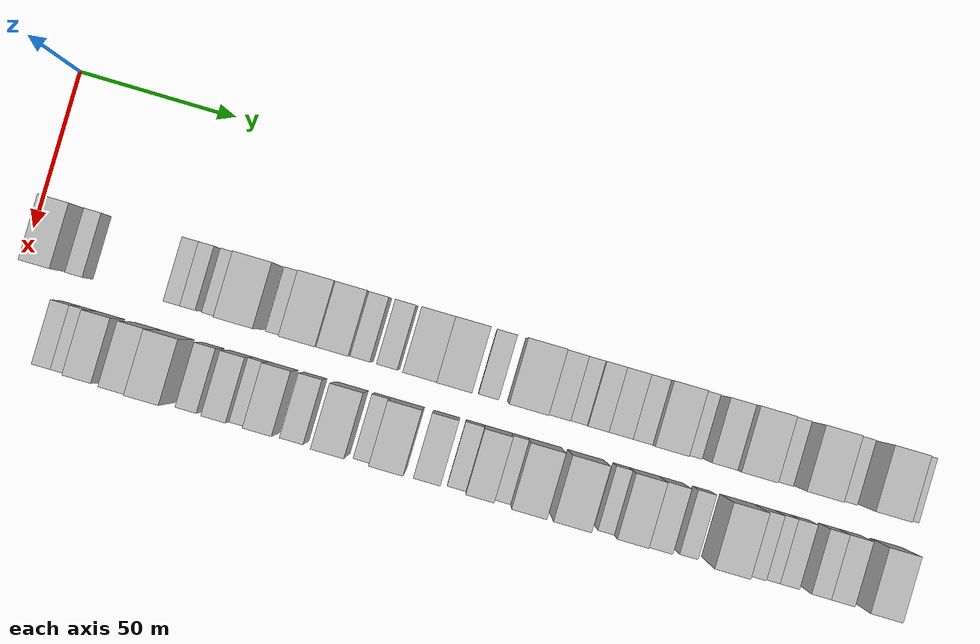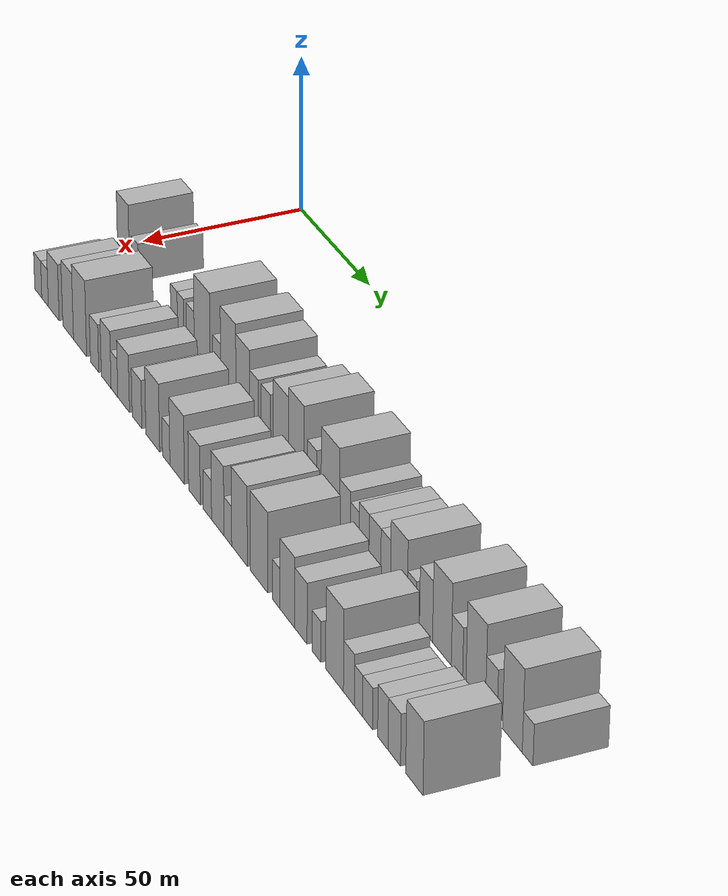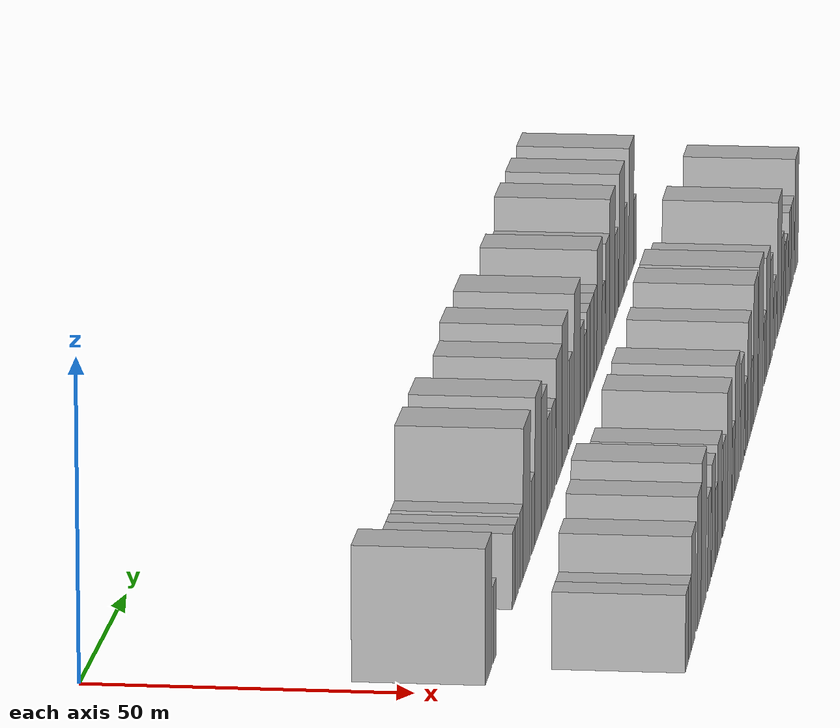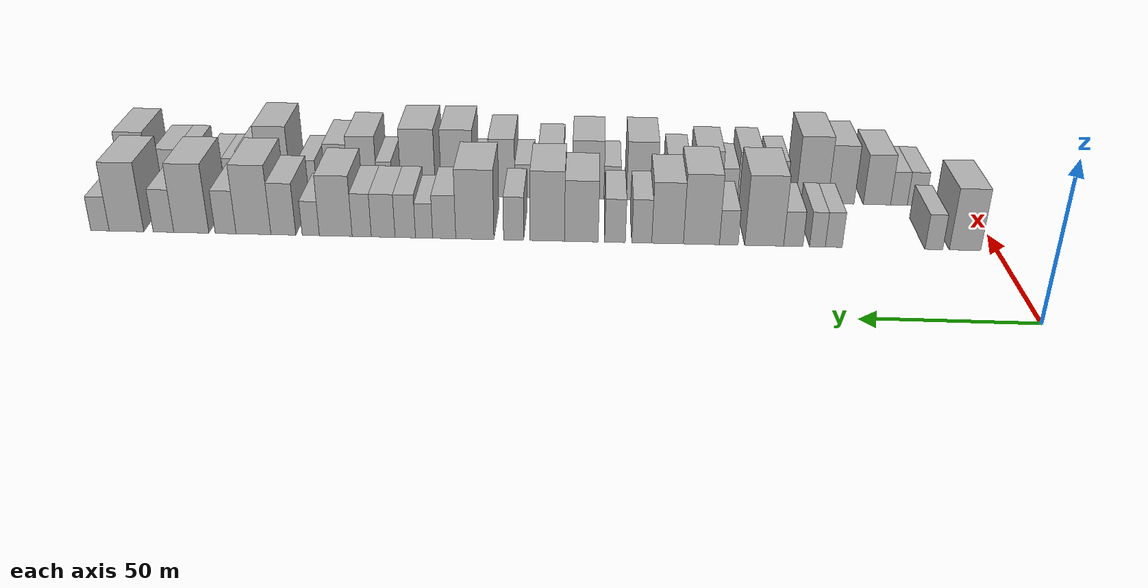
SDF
<sdf version="1.6">
 <world name="default">
  <model name="building_33">
   <static>1</static>
   <pose>50.0000 9.8166 0 0.000000 0.000000 0.000000</pose>
   <link name="link">
    <pose>0 0 10.50 0 0 0</pose>
    <collision name="collision"><geometry><box><size>20.0000 9.4724 21.0000</size></box></geometry></collision>
    <visual name="visual">
     <cast_shadows>0</cast_shadows>
     <geometry><box><size>20.0000 9.4724 21.0000</size></box></geometry>
     <material>
      <script>
       <uri>model://HANNAS_wall/materials/scripts</uri>
       <uri>model://HANNAS_wall/materials/textures</uri>
       <name>vrc/HANNAS_wall</name>
      </script>
     </material>
    </visual>
   </link>
  </model>
  <model name="building_34">
   <static>1</static>
   <pose>50.0000 19.2327 0 0.000000 0.000000 0.000000</pose>
   <link name="link">
    <pose>0 0 6.00 0 0 0</pose>
    <collision name="collision"><geometry><box><size>20.0000 5.3598 12.0000</size></box></geometry></collision>
    <visual name="visual">
     <cast_shadows>0</cast_shadows>
     <geometry><box><size>20.0000 5.3598 12.0000</size></box></geometry>
     <material>
      <script>
       <uri>model://HANNAS_wall/materials/scripts</uri>
       <uri>model://HANNAS_wall/materials/textures</uri>
       <name>vrc/HANNAS_wall</name>
      </script>
     </material>
    </visual>
   </link>
  </model>
  <model name="building_35">
   <static>1</static>
   <pose>50.0000 49.6123 0 0.000000 0.000000 0.000000</pose>
   <link name="link">
    <pose>0 0 6.00 0 0 0</pose>
    <collision name="collision"><geometry><box><size>20.0000 5.1332 12.0000</size></box></geometry></collision>
    <visual name="visual">
     <cast_shadows>0</cast_shadows>
     <geometry><box><size>20.0000 5.1332 12.0000</size></box></geometry>
     <material>
      <script>
       <uri>model://HANNAS_wall/materials/scripts</uri>
       <uri>model://HANNAS_wall/materials/textures</uri>
       <name>vrc/HANNAS_wall</name>
      </script>
     </material>
    </visual>
   </link>
  </model>
  <model name="building_36">
   <static>1</static>
   <pose>50.0000 54.5868 0 0.000000 0.000000 0.000000</pose>
   <link name="link">
    <pose>0 0 6.00 0 0 0</pose>
    <collision name="collision"><geometry><box><size>20.0000 4.8158 12.0000</size></box></geometry></collision>
    <visual name="visual">
     <cast_shadows>0</cast_shadows>
     <geometry><box><size>20.0000 4.8158 12.0000</size></box></geometry>
     <material>
      <script>
       <uri>model://HANNAS_wall/materials/scripts</uri>
       <uri>model://HANNAS_wall/materials/textures</uri>
       <name>vrc/HANNAS_wall</name>
      </script>
     </material>
    </visual>
   </link>
  </model>
  <model name="building_37">
   <static>1</static>
   <pose>50.0000 61.9565 0 0.000000 0.000000 0.000000</pose>
   <link name="link">
    <pose>0 0 6.00 0 0 0</pose>
    <collision name="collision"><geometry><box><size>20.0000 5.9236 12.0000</size></box></geometry></collision>
    <visual name="visual">
     <cast_shadows>0</cast_shadows>
     <geometry><box><size>20.0000 5.9236 12.0000</size></box></geometry>
     <material>
      <script>
       <uri>model://HANNAS_wall/materials/scripts</uri>
       <uri>model://HANNAS_wall/materials/textures</uri>
       <name>vrc/HANNAS_wall</name>
      </script>
     </material>
    </visual>
   </link>
  </model>
  <model name="building_38">
   <static>1</static>
   <pose>50.0000 70.8551 0 0.000000 0.000000 0.000000</pose>
   <link name="link">
    <pose>0 0 12.00 0 0 0</pose>
    <collision name="collision"><geometry><box><size>20.0000 11.8737 24.0000</size></box></geometry></collision>
    <visual name="visual">
     <cast_shadows>0</cast_shadows>
     <geometry><box><size>20.0000 11.8737 24.0000</size></box></geometry>
     <material>
      <script>
       <uri>model://HANNAS_wall/materials/scripts</uri>
       <uri>model://HANNAS_wall/materials/textures</uri>
       <name>vrc/HANNAS_wall</name>
      </script>
     </material>
    </visual>
   </link>
  </model>
  <model name="building_39">
   <static>1</static>
   <pose>50.0000 81.6715 0 0.000000 0.000000 0.000000</pose>
   <link name="link">
    <pose>0 0 6.00 0 0 0</pose>
    <collision name="collision"><geometry><box><size>20.0000 5.7592 12.0000</size></box></geometry></collision>
    <visual name="visual">
     <cast_shadows>0</cast_shadows>
     <geometry><box><size>20.0000 5.7592 12.0000</size></box></geometry>
     <material>
      <script>
       <uri>model://HANNAS_wall/materials/scripts</uri>
       <uri>model://HANNAS_wall/materials/textures</uri>
       <name>vrc/HANNAS_wall</name>
      </script>
     </material>
    </visual>
   </link>
  </model>
  <model name="building_40">
   <static>1</static>
   <pose>50.0000 90.0841 0 0.000000 0.000000 0.000000</pose>
   <link name="link">
    <pose>0 0 12.00 0 0 0</pose>
    <collision name="collision"><geometry><box><size>20.0000 11.0659 24.0000</size></box></geometry></collision>
    <visual name="visual">
     <cast_shadows>0</cast_shadows>
     <geometry><box><size>20.0000 11.0659 24.0000</size></box></geometry>
     <material>
      <script>
       <uri>model://HANNAS_wall/materials/scripts</uri>
       <uri>model://HANNAS_wall/materials/textures</uri>
       <name>vrc/HANNAS_wall</name>
      </script>
     </material>
    </visual>
   </link>
  </model>
  <model name="building_41">
   <static>1</static>
   <pose>50.0000 100.4950 0 0.000000 0.000000 0.000000</pose>
   <link name="link">
    <pose>0 0 10.50 0 0 0</pose>
    <collision name="collision"><geometry><box><size>20.0000 9.7560 21.0000</size></box></geometry></collision>
    <visual name="visual">
     <cast_shadows>0</cast_shadows>
     <geometry><box><size>20.0000 9.7560 21.0000</size></box></geometry>
     <material>
      <script>
       <uri>model://HANNAS_wall/materials/scripts</uri>
       <uri>model://HANNAS_wall/materials/textures</uri>
       <name>vrc/HANNAS_wall</name>
      </script>
     </material>
    </visual>
   </link>
  </model>
  <model name="building_42">
   <static>1</static>
   <pose>50.0000 108.4439 0 0.000000 0.000000 0.000000</pose>
   <link name="link">
    <pose>0 0 7.50 0 0 0</pose>
    <collision name="collision"><geometry><box><size>20.0000 6.1417 15.0000</size></box></geometry></collision>
    <visual name="visual">
     <cast_shadows>0</cast_shadows>
     <geometry><box><size>20.0000 6.1417 15.0000</size></box></geometry>
     <material>
      <script>
       <uri>model://HANNAS_wall/materials/scripts</uri>
       <uri>model://HANNAS_wall/materials/textures</uri>
       <name>vrc/HANNAS_wall</name>
      </script>
     </material>
    </visual>
   </link>
  </model>
  <model name="building_43">
   <static>1</static>
   <pose>50.0000 116.7154 0 0.000000 0.000000 0.000000</pose>
   <link name="link">
    <pose>0 0 7.50 0 0 0</pose>
    <collision name="collision"><geometry><box><size>20.0000 6.4013 15.0000</size></box></geometry></collision>
    <visual name="visual">
     <cast_shadows>0</cast_shadows>
     <geometry><box><size>20.0000 6.4013 15.0000</size></box></geometry>
     <material>
      <script>
       <uri>model://HANNAS_wall/materials/scripts</uri>
       <uri>model://HANNAS_wall/materials/textures</uri>
       <name>vrc/HANNAS_wall</name>
      </script>
     </material>
    </visual>
   </link>
  </model>
  <model name="building_44">
   <static>1</static>
   <pose>50.0000 127.1269 0 0.000000 0.000000 0.000000</pose>
   <link name="link">
    <pose>0 0 10.50 0 0 0</pose>
    <collision name="collision"><geometry><box><size>20.0000 10.4218 21.0000</size></box></geometry></collision>
    <visual name="visual">
     <cast_shadows>0</cast_shadows>
     <geometry><box><size>20.0000 10.4218 21.0000</size></box></geometry>
     <material>
      <script>
       <uri>model://HANNAS_wall/materials/scripts</uri>
       <uri>model://HANNAS_wall/materials/textures</uri>
       <name>vrc/HANNAS_wall</name>
      </script>
     </material>
    </visual>
   </link>
  </model>
  <model name="building_45">
   <static>1</static>
   <pose>50.0000 137.6844 0 0.000000 0.000000 0.000000</pose>
   <link name="link">
    <pose>0 0 12.00 0 0 0</pose>
    <collision name="collision"><geometry><box><size>20.0000 10.6931 24.0000</size></box></geometry></collision>
    <visual name="visual">
     <cast_shadows>0</cast_shadows>
     <geometry><box><size>20.0000 10.6931 24.0000</size></box></geometry>
     <material>
      <script>
       <uri>model://HANNAS_wall/materials/scripts</uri>
       <uri>model://HANNAS_wall/materials/textures</uri>
       <name>vrc/HANNAS_wall</name>
      </script>
     </material>
    </visual>
   </link>
  </model>
  <model name="building_46">
   <static>1</static>
   <pose>50.0000 148.1507 0 0.000000 0.000000 0.000000</pose>
   <link name="link">
    <pose>0 0 7.50 0 0 0</pose>
    <collision name="collision"><geometry><box><size>20.0000 6.2395 15.0000</size></box></geometry></collision>
    <visual name="visual">
     <cast_shadows>0</cast_shadows>
     <geometry><box><size>20.0000 6.2395 15.0000</size></box></geometry>
     <material>
      <script>
       <uri>model://HANNAS_wall/materials/scripts</uri>
       <uri>model://HANNAS_wall/materials/textures</uri>
       <name>vrc/HANNAS_wall</name>
      </script>
     </material>
    </visual>
   </link>
  </model>
  <model name="building_47">
   <static>1</static>
   <pose>50.0000 160.2290 0 0.000000 0.000000 0.000000</pose>
   <link name="link">
    <pose>0 0 12.00 0 0 0</pose>
    <collision name="collision"><geometry><box><size>20.0000 11.9171 24.0000</size></box></geometry></collision>
    <visual name="visual">
     <cast_shadows>0</cast_shadows>
     <geometry><box><size>20.0000 11.9171 24.0000</size></box></geometry>
     <material>
      <script>
       <uri>model://HANNAS_wall/materials/scripts</uri>
       <uri>model://HANNAS_wall/materials/textures</uri>
       <name>vrc/HANNAS_wall</name>
      </script>
     </material>
    </visual>
   </link>
  </model>
  <model name="building_48">
   <static>1</static>
   <pose>50.0000 169.8042 0 0.000000 0.000000 0.000000</pose>
   <link name="link">
    <pose>0 0 7.50 0 0 0</pose>
    <collision name="collision"><geometry><box><size>20.0000 7.2333 15.0000</size></box></geometry></collision>
    <visual name="visual">
     <cast_shadows>0</cast_shadows>
     <geometry><box><size>20.0000 7.2333 15.0000</size></box></geometry>
     <material>
      <script>
       <uri>model://HANNAS_wall/materials/scripts</uri>
       <uri>model://HANNAS_wall/materials/textures</uri>
       <name>vrc/HANNAS_wall</name>
      </script>
     </material>
    </visual>
   </link>
  </model>
  <model name="building_49">
   <static>1</static>
   <pose>50.0000 176.1011 0 0.000000 0.000000 0.000000</pose>
   <link name="link">
    <pose>0 0 6.00 0 0 0</pose>
    <collision name="collision"><geometry><box><size>20.0000 5.3603 12.0000</size></box></geometry></collision>
    <visual name="visual">
     <cast_shadows>0</cast_shadows>
     <geometry><box><size>20.0000 5.3603 12.0000</size></box></geometry>
     <material>
      <script>
       <uri>model://HANNAS_wall/materials/scripts</uri>
       <uri>model://HANNAS_wall/materials/textures</uri>
       <name>vrc/HANNAS_wall</name>
      </script>
     </material>
    </visual>
   </link>
  </model>
  <model name="building_50">
   <static>1</static>
   <pose>50.0000 181.9888 0 0.000000 0.000000 0.000000</pose>
   <link name="link">
    <pose>0 0 7.50 0 0 0</pose>
    <collision name="collision"><geometry><box><size>20.0000 6.4152 15.0000</size></box></geometry></collision>
    <visual name="visual">
     <cast_shadows>0</cast_shadows>
     <geometry><box><size>20.0000 6.4152 15.0000</size></box></geometry>
     <material>
      <script>
       <uri>model://HANNAS_wall/materials/scripts</uri>
       <uri>model://HANNAS_wall/materials/textures</uri>
       <name>vrc/HANNAS_wall</name>
      </script>
     </material>
    </visual>
   </link>
  </model>
  <model name="building_51">
   <static>1</static>
   <pose>50.0000 188.9186 0 0.000000 0.000000 0.000000</pose>
   <link name="link">
    <pose>0 0 7.50 0 0 0</pose>
    <collision name="collision"><geometry><box><size>20.0000 7.4444 15.0000</size></box></geometry></collision>
    <visual name="visual">
     <cast_shadows>0</cast_shadows>
     <geometry><box><size>20.0000 7.4444 15.0000</size></box></geometry>
     <material>
      <script>
       <uri>model://HANNAS_wall/materials/scripts</uri>
       <uri>model://HANNAS_wall/materials/textures</uri>
       <name>vrc/HANNAS_wall</name>
      </script>
     </material>
    </visual>
   </link>
  </model>
  <model name="building_52">
   <static>1</static>
   <pose>50.0000 195.6576 0 0.000000 0.000000 0.000000</pose>
   <link name="link">
    <pose>0 0 7.50 0 0 0</pose>
    <collision name="collision"><geometry><box><size>20.0000 6.0336 15.0000</size></box></geometry></collision>
    <visual name="visual">
     <cast_shadows>0</cast_shadows>
     <geometry><box><size>20.0000 6.0336 15.0000</size></box></geometry>
     <material>
      <script>
       <uri>model://HANNAS_wall/materials/scripts</uri>
       <uri>model://HANNAS_wall/materials/textures</uri>
       <name>vrc/HANNAS_wall</name>
      </script>
     </material>
    </visual>
   </link>
  </model>
  <model name="building_53">
   <static>1</static>
   <pose>50.0000 203.8376 0 0.000000 0.000000 0.000000</pose>
   <link name="link">
    <pose>0 0 10.50 0 0 0</pose>
    <collision name="collision"><geometry><box><size>20.0000 10.3264 21.0000</size></box></geometry></collision>
    <visual name="visual">
     <cast_shadows>0</cast_shadows>
     <geometry><box><size>20.0000 10.3264 21.0000</size></box></geometry>
     <material>
      <script>
       <uri>model://HANNAS_wall/materials/scripts</uri>
       <uri>model://HANNAS_wall/materials/textures</uri>
       <name>vrc/HANNAS_wall</name>
      </script>
     </material>
    </visual>
   </link>
  </model>
  <model name="building_54">
   <static>1</static>
   <pose>50.0000 211.7168 0 0.000000 0.000000 0.000000</pose>
   <link name="link">
    <pose>0 0 6.00 0 0 0</pose>
    <collision name="collision"><geometry><box><size>20.0000 5.4320 12.0000</size></box></geometry></collision>
    <visual name="visual">
     <cast_shadows>0</cast_shadows>
     <geometry><box><size>20.0000 5.4320 12.0000</size></box></geometry>
     <material>
      <script>
       <uri>model://HANNAS_wall/materials/scripts</uri>
       <uri>model://HANNAS_wall/materials/textures</uri>
       <name>vrc/HANNAS_wall</name>
      </script>
     </material>
    </visual>
   </link>
  </model>
  <model name="building_55">
   <static>1</static>
   <pose>50.0000 220.3653 0 0.000000 0.000000 0.000000</pose>
   <link name="link">
    <pose>0 0 9.00 0 0 0</pose>
    <collision name="collision"><geometry><box><size>20.0000 7.8650 18.0000</size></box></geometry></collision>
    <visual name="visual">
     <cast_shadows>0</cast_shadows>
     <geometry><box><size>20.0000 7.8650 18.0000</size></box></geometry>
     <material>
      <script>
       <uri>model://HANNAS_wall/materials/scripts</uri>
       <uri>model://HANNAS_wall/materials/textures</uri>
       <name>vrc/HANNAS_wall</name>
      </script>
     </material>
    </visual>
   </link>
  </model>
  <model name="building_56">
   <static>1</static>
   <pose>50.0000 229.8225 0 0.000000 0.000000 0.000000</pose>
   <link name="link">
    <pose>0 0 12.00 0 0 0</pose>
    <collision name="collision"><geometry><box><size>20.0000 11.0495 24.0000</size></box></geometry></collision>
    <visual name="visual">
     <cast_shadows>0</cast_shadows>
     <geometry><box><size>20.0000 11.0495 24.0000</size></box></geometry>
     <material>
      <script>
       <uri>model://HANNAS_wall/materials/scripts</uri>
       <uri>model://HANNAS_wall/materials/textures</uri>
       <name>vrc/HANNAS_wall</name>
      </script>
     </material>
    </visual>
   </link>
  </model>
  <model name="building_57">
   <static>1</static>
   <pose>50.0000 238.6671 0 0.000000 0.000000 0.000000</pose>
   <link name="link">
    <pose>0 0 7.50 0 0 0</pose>
    <collision name="collision"><geometry><box><size>20.0000 6.6396 15.0000</size></box></geometry></collision>
    <visual name="visual">
     <cast_shadows>0</cast_shadows>
     <geometry><box><size>20.0000 6.6396 15.0000</size></box></geometry>
     <material>
      <script>
       <uri>model://HANNAS_wall/materials/scripts</uri>
       <uri>model://HANNAS_wall/materials/textures</uri>
       <name>vrc/HANNAS_wall</name>
      </script>
     </material>
    </visual>
   </link>
  </model>
  <model name="building_58">
   <static>1</static>
   <pose>50.0000 249.5726 0 0.000000 0.000000 0.000000</pose>
   <link name="link">
    <pose>0 0 12.00 0 0 0</pose>
    <collision name="collision"><geometry><box><size>20.0000 11.1714 24.0000</size></box></geometry></collision>
    <visual name="visual">
     <cast_shadows>0</cast_shadows>
     <geometry><box><size>20.0000 11.1714 24.0000</size></box></geometry>
     <material>
      <script>
       <uri>model://HANNAS_wall/materials/scripts</uri>
       <uri>model://HANNAS_wall/materials/textures</uri>
       <name>vrc/HANNAS_wall</name>
      </script>
     </material>
    </visual>
   </link>
  </model>
  <model name="building_59">
   <static>1</static>
   <pose>50.0000 258.4439 0 0.000000 0.000000 0.000000</pose>
   <link name="link">
    <pose>0 0 7.50 0 0 0</pose>
    <collision name="collision"><geometry><box><size>20.0000 6.5713 15.0000</size></box></geometry></collision>
    <visual name="visual">
     <cast_shadows>0</cast_shadows>
     <geometry><box><size>20.0000 6.5713 15.0000</size></box></geometry>
     <material>
      <script>
       <uri>model://HANNAS_wall/materials/scripts</uri>
       <uri>model://HANNAS_wall/materials/textures</uri>
       <name>vrc/HANNAS_wall</name>
      </script>
     </material>
    </visual>
   </link>
  </model>
  <model name="building_60">
   <static>1</static>
   <pose>50.0000 270.2528 0 0.000000 0.000000 0.000000</pose>
   <link name="link">
    <pose>0 0 12.00 0 0 0</pose>
    <collision name="collision"><geometry><box><size>20.0000 11.0464 24.0000</size></box></geometry></collision>
    <visual name="visual">
     <cast_shadows>0</cast_shadows>
     <geometry><box><size>20.0000 11.0464 24.0000</size></box></geometry>
     <material>
      <script>
       <uri>model://HANNAS_wall/materials/scripts</uri>
       <uri>model://HANNAS_wall/materials/textures</uri>
       <name>vrc/HANNAS_wall</name>
      </script>
     </material>
    </visual>
   </link>
  </model>
  <model name="building_61">
   <static>1</static>
   <pose>50.0000 278.7165 0 0.000000 0.000000 0.000000</pose>
   <link name="link">
    <pose>0 0 6.00 0 0 0</pose>
    <collision name="collision"><geometry><box><size>20.0000 5.8810 12.0000</size></box></geometry></collision>
    <visual name="visual">
     <cast_shadows>0</cast_shadows>
     <geometry><box><size>20.0000 5.8810 12.0000</size></box></geometry>
     <material>
      <script>
       <uri>model://HANNAS_wall/materials/scripts</uri>
       <uri>model://HANNAS_wall/materials/textures</uri>
       <name>vrc/HANNAS_wall</name>
      </script>
     </material>
    </visual>
   </link>
  </model>
  <model name="building_89">
   <static>1</static>
   <pose>79.0000 17.6219 0 0.000000 0.000000 0.000000</pose>
   <link name="link">
    <pose>0 0 6.00 0 0 0</pose>
    <collision name="collision"><geometry><box><size>20.0000 5.8605 12.0000</size></box></geometry></collision>
    <visual name="visual">
     <cast_shadows>0</cast_shadows>
     <geometry><box><size>20.0000 5.8605 12.0000</size></box></geometry>
     <material>
      <script>
       <uri>model://HANNAS_wall/materials/scripts</uri>
       <uri>model://HANNAS_wall/materials/textures</uri>
       <name>vrc/HANNAS_wall</name>
      </script>
     </material>
    </visual>
   </link>
  </model>
  <model name="building_90">
   <static>1</static>
   <pose>79.0000 23.2705 0 0.000000 0.000000 0.000000</pose>
   <link name="link">
    <pose>0 0 6.00 0 0 0</pose>
    <collision name="collision"><geometry><box><size>20.0000 5.4366 12.0000</size></box></geometry></collision>
    <visual name="visual">
     <cast_shadows>0</cast_shadows>
     <geometry><box><size>20.0000 5.4366 12.0000</size></box></geometry>
     <material>
      <script>
       <uri>model://HANNAS_wall/materials/scripts</uri>
       <uri>model://HANNAS_wall/materials/textures</uri>
       <name>vrc/HANNAS_wall</name>
      </script>
     </material>
    </visual>
   </link>
  </model>
  <model name="building_91">
   <static>1</static>
   <pose>79.0000 30.4261 0 0.000000 0.000000 0.000000</pose>
   <link name="link">
    <pose>0 0 9.00 0 0 0</pose>
    <collision name="collision"><geometry><box><size>20.0000 8.8746 18.0000</size></box></geometry></collision>
    <visual name="visual">
     <cast_shadows>0</cast_shadows>
     <geometry><box><size>20.0000 8.8746 18.0000</size></box></geometry>
     <material>
      <script>
       <uri>model://HANNAS_wall/materials/scripts</uri>
       <uri>model://HANNAS_wall/materials/textures</uri>
       <name>vrc/HANNAS_wall</name>
      </script>
     </material>
    </visual>
   </link>
  </model>
  <model name="building_92">
   <static>1</static>
   <pose>79.0000 42.1721 0 0.000000 0.000000 0.000000</pose>
   <link name="link">
    <pose>0 0 10.50 0 0 0</pose>
    <collision name="collision"><geometry><box><size>20.0000 8.6176 21.0000</size></box></geometry></collision>
    <visual name="visual">
     <cast_shadows>0</cast_shadows>
     <geometry><box><size>20.0000 8.6176 21.0000</size></box></geometry>
     <material>
      <script>
       <uri>model://HANNAS_wall/materials/scripts</uri>
       <uri>model://HANNAS_wall/materials/textures</uri>
       <name>vrc/HANNAS_wall</name>
      </script>
     </material>
    </visual>
   </link>
  </model>
  <model name="building_93">
   <static>1</static>
   <pose>79.0000 51.7223 0 0.000000 0.000000 0.000000</pose>
   <link name="link">
    <pose>0 0 12.00 0 0 0</pose>
    <collision name="collision"><geometry><box><size>20.0000 10.4828 24.0000</size></box></geometry></collision>
    <visual name="visual">
     <cast_shadows>0</cast_shadows>
     <geometry><box><size>20.0000 10.4828 24.0000</size></box></geometry>
     <material>
      <script>
       <uri>model://HANNAS_wall/materials/scripts</uri>
       <uri>model://HANNAS_wall/materials/textures</uri>
       <name>vrc/HANNAS_wall</name>
      </script>
     </material>
    </visual>
   </link>
  </model>
  <model name="building_94">
   <static>1</static>
   <pose>79.0000 63.2449 0 0.000000 0.000000 0.000000</pose>
   <link name="link">
    <pose>0 0 7.50 0 0 0</pose>
    <collision name="collision"><geometry><box><size>20.0000 6.5624 15.0000</size></box></geometry></collision>
    <visual name="visual">
     <cast_shadows>0</cast_shadows>
     <geometry><box><size>20.0000 6.5624 15.0000</size></box></geometry>
     <material>
      <script>
       <uri>model://HANNAS_wall/materials/scripts</uri>
       <uri>model://HANNAS_wall/materials/textures</uri>
       <name>vrc/HANNAS_wall</name>
      </script>
     </material>
    </visual>
   </link>
  </model>
  <model name="building_95">
   <static>1</static>
   <pose>79.0000 72.2917 0 0.000000 0.000000 0.000000</pose>
   <link name="link">
    <pose>0 0 9.00 0 0 0</pose>
    <collision name="collision"><geometry><box><size>20.0000 7.5312 18.0000</size></box></geometry></collision>
    <visual name="visual">
     <cast_shadows>0</cast_shadows>
     <geometry><box><size>20.0000 7.5312 18.0000</size></box></geometry>
     <material>
      <script>
       <uri>model://HANNAS_wall/materials/scripts</uri>
       <uri>model://HANNAS_wall/materials/textures</uri>
       <name>vrc/HANNAS_wall</name>
      </script>
     </material>
    </visual>
   </link>
  </model>
  <model name="building_96">
   <static>1</static>
   <pose>79.0000 78.6414 0 0.000000 0.000000 0.000000</pose>
   <link name="link">
    <pose>0 0 6.00 0 0 0</pose>
    <collision name="collision"><geometry><box><size>20.0000 5.1682 12.0000</size></box></geometry></collision>
    <visual name="visual">
     <cast_shadows>0</cast_shadows>
     <geometry><box><size>20.0000 5.1682 12.0000</size></box></geometry>
     <material>
      <script>
       <uri>model://HANNAS_wall/materials/scripts</uri>
       <uri>model://HANNAS_wall/materials/textures</uri>
       <name>vrc/HANNAS_wall</name>
      </script>
     </material>
    </visual>
   </link>
  </model>
  <model name="building_97">
   <static>1</static>
   <pose>79.0000 85.6778 0 0.000000 0.000000 0.000000</pose>
   <link name="link">
    <pose>0 0 9.00 0 0 0</pose>
    <collision name="collision"><geometry><box><size>20.0000 8.9047 18.0000</size></box></geometry></collision>
    <visual name="visual">
     <cast_shadows>0</cast_shadows>
     <geometry><box><size>20.0000 8.9047 18.0000</size></box></geometry>
     <material>
      <script>
       <uri>model://HANNAS_wall/materials/scripts</uri>
       <uri>model://HANNAS_wall/materials/textures</uri>
       <name>vrc/HANNAS_wall</name>
      </script>
     </material>
    </visual>
   </link>
  </model>
  <model name="building_98">
   <static>1</static>
   <pose>79.0000 95.7661 0 0.000000 0.000000 0.000000</pose>
   <link name="link">
    <pose>0 0 7.50 0 0 0</pose>
    <collision name="collision"><geometry><box><size>20.0000 7.2720 15.0000</size></box></geometry></collision>
    <visual name="visual">
     <cast_shadows>0</cast_shadows>
     <geometry><box><size>20.0000 7.2720 15.0000</size></box></geometry>
     <material>
      <script>
       <uri>model://HANNAS_wall/materials/scripts</uri>
       <uri>model://HANNAS_wall/materials/textures</uri>
       <name>vrc/HANNAS_wall</name>
      </script>
     </material>
    </visual>
   </link>
  </model>
  <model name="building_99">
   <static>1</static>
   <pose>79.0000 107.4903 0 0.000000 0.000000 0.000000</pose>
   <link name="link">
    <pose>0 0 10.50 0 0 0</pose>
    <collision name="collision"><geometry><box><size>20.0000 10.1763 21.0000</size></box></geometry></collision>
    <visual name="visual">
     <cast_shadows>0</cast_shadows>
     <geometry><box><size>20.0000 10.1763 21.0000</size></box></geometry>
     <material>
      <script>
       <uri>model://HANNAS_wall/materials/scripts</uri>
       <uri>model://HANNAS_wall/materials/textures</uri>
       <name>vrc/HANNAS_wall</name>
      </script>
     </material>
    </visual>
   </link>
  </model>
  <model name="building_100">
   <static>1</static>
   <pose>79.0000 117.3229 0 0.000000 0.000000 0.000000</pose>
   <link name="link">
    <pose>0 0 6.00 0 0 0</pose>
    <collision name="collision"><geometry><box><size>20.0000 5.4890 12.0000</size></box></geometry></collision>
    <visual name="visual">
     <cast_shadows>0</cast_shadows>
     <geometry><box><size>20.0000 5.4890 12.0000</size></box></geometry>
     <material>
      <script>
       <uri>model://HANNAS_wall/materials/scripts</uri>
       <uri>model://HANNAS_wall/materials/textures</uri>
       <name>vrc/HANNAS_wall</name>
      </script>
     </material>
    </visual>
   </link>
  </model>
  <model name="building_101">
   <static>1</static>
   <pose>79.0000 125.3008 0 0.000000 0.000000 0.000000</pose>
   <link name="link">
    <pose>0 0 10.50 0 0 0</pose>
    <collision name="collision"><geometry><box><size>20.0000 10.4669 21.0000</size></box></geometry></collision>
    <visual name="visual">
     <cast_shadows>0</cast_shadows>
     <geometry><box><size>20.0000 10.4669 21.0000</size></box></geometry>
     <material>
      <script>
       <uri>model://HANNAS_wall/materials/scripts</uri>
       <uri>model://HANNAS_wall/materials/textures</uri>
       <name>vrc/HANNAS_wall</name>
      </script>
     </material>
    </visual>
   </link>
  </model>
  <model name="building_102">
   <static>1</static>
   <pose>79.0000 137.6668 0 0.000000 0.000000 0.000000</pose>
   <link name="link">
    <pose>0 0 9.00 0 0 0</pose>
    <collision name="collision"><geometry><box><size>20.0000 8.2651 18.0000</size></box></geometry></collision>
    <visual name="visual">
     <cast_shadows>0</cast_shadows>
     <geometry><box><size>20.0000 8.2651 18.0000</size></box></geometry>
     <material>
      <script>
       <uri>model://HANNAS_wall/materials/scripts</uri>
       <uri>model://HANNAS_wall/materials/textures</uri>
       <name>vrc/HANNAS_wall</name>
      </script>
     </material>
    </visual>
   </link>
  </model>
  <model name="building_103">
   <static>1</static>
   <pose>79.0000 146.7134 0 0.000000 0.000000 0.000000</pose>
   <link name="link">
    <pose>0 0 6.00 0 0 0</pose>
    <collision name="collision"><geometry><box><size>20.0000 5.8281 12.0000</size></box></geometry></collision>
    <visual name="visual">
     <cast_shadows>0</cast_shadows>
     <geometry><box><size>20.0000 5.8281 12.0000</size></box></geometry>
     <material>
      <script>
       <uri>model://HANNAS_wall/materials/scripts</uri>
       <uri>model://HANNAS_wall/materials/textures</uri>
       <name>vrc/HANNAS_wall</name>
      </script>
     </material>
    </visual>
   </link>
  </model>
  <model name="building_104">
   <static>1</static>
   <pose>79.0000 153.9456 0 0.000000 0.000000 0.000000</pose>
   <link name="link">
    <pose>0 0 10.50 0 0 0</pose>
    <collision name="collision"><geometry><box><size>20.0000 8.6362 21.0000</size></box></geometry></collision>
    <visual name="visual">
     <cast_shadows>0</cast_shadows>
     <geometry><box><size>20.0000 8.6362 21.0000</size></box></geometry>
     <material>
      <script>
       <uri>model://HANNAS_wall/materials/scripts</uri>
       <uri>model://HANNAS_wall/materials/textures</uri>
       <name>vrc/HANNAS_wall</name>
      </script>
     </material>
    </visual>
   </link>
  </model>
  <model name="building_105">
   <static>1</static>
   <pose>79.0000 160.8626 0 0.000000 0.000000 0.000000</pose>
   <link name="link">
    <pose>0 0 6.00 0 0 0</pose>
    <collision name="collision"><geometry><box><size>20.0000 5.1980 12.0000</size></box></geometry></collision>
    <visual name="visual">
     <cast_shadows>0</cast_shadows>
     <geometry><box><size>20.0000 5.1980 12.0000</size></box></geometry>
     <material>
      <script>
       <uri>model://HANNAS_wall/materials/scripts</uri>
       <uri>model://HANNAS_wall/materials/textures</uri>
       <name>vrc/HANNAS_wall</name>
      </script>
     </material>
    </visual>
   </link>
  </model>
  <model name="building_106">
   <static>1</static>
   <pose>79.0000 168.7776 0 0.000000 0.000000 0.000000</pose>
   <link name="link">
    <pose>0 0 12.00 0 0 0</pose>
    <collision name="collision"><geometry><box><size>20.0000 10.6319 24.0000</size></box></geometry></collision>
    <visual name="visual">
     <cast_shadows>0</cast_shadows>
     <geometry><box><size>20.0000 10.6319 24.0000</size></box></geometry>
     <material>
      <script>
       <uri>model://HANNAS_wall/materials/scripts</uri>
       <uri>model://HANNAS_wall/materials/textures</uri>
       <name>vrc/HANNAS_wall</name>
      </script>
     </material>
    </visual>
   </link>
  </model>
  <model name="building_107">
   <static>1</static>
   <pose>79.0000 181.8292 0 0.000000 0.000000 0.000000</pose>
   <link name="link">
    <pose>0 0 12.00 0 0 0</pose>
    <collision name="collision"><geometry><box><size>20.0000 11.4713 24.0000</size></box></geometry></collision>
    <visual name="visual">
     <cast_shadows>0</cast_shadows>
     <geometry><box><size>20.0000 11.4713 24.0000</size></box></geometry>
     <material>
      <script>
       <uri>model://HANNAS_wall/materials/scripts</uri>
       <uri>model://HANNAS_wall/materials/textures</uri>
       <name>vrc/HANNAS_wall</name>
      </script>
     </material>
    </visual>
   </link>
  </model>
  <model name="building_108">
   <static>1</static>
   <pose>79.0000 193.0919 0 0.000000 0.000000 0.000000</pose>
   <link name="link">
    <pose>0 0 6.00 0 0 0</pose>
    <collision name="collision"><geometry><box><size>20.0000 5.0541 12.0000</size></box></geometry></collision>
    <visual name="visual">
     <cast_shadows>0</cast_shadows>
     <geometry><box><size>20.0000 5.0541 12.0000</size></box></geometry>
     <material>
      <script>
       <uri>model://HANNAS_wall/materials/scripts</uri>
       <uri>model://HANNAS_wall/materials/textures</uri>
       <name>vrc/HANNAS_wall</name>
      </script>
     </material>
    </visual>
   </link>
  </model>
  <model name="building_109">
   <static>1</static>
   <pose>79.0000 200.4221 0 0.000000 0.000000 0.000000</pose>
   <link name="link">
    <pose>0 0 10.50 0 0 0</pose>
    <collision name="collision"><geometry><box><size>20.0000 9.6063 21.0000</size></box></geometry></collision>
    <visual name="visual">
     <cast_shadows>0</cast_shadows>
     <geometry><box><size>20.0000 9.6063 21.0000</size></box></geometry>
     <material>
      <script>
       <uri>model://HANNAS_wall/materials/scripts</uri>
       <uri>model://HANNAS_wall/materials/textures</uri>
       <name>vrc/HANNAS_wall</name>
      </script>
     </material>
    </visual>
   </link>
  </model>
  <model name="building_110">
   <static>1</static>
   <pose>79.0000 209.0762 0 0.000000 0.000000 0.000000</pose>
   <link name="link">
    <pose>0 0 9.00 0 0 0</pose>
    <collision name="collision"><geometry><box><size>20.0000 7.7019 18.0000</size></box></geometry></collision>
    <visual name="visual">
     <cast_shadows>0</cast_shadows>
     <geometry><box><size>20.0000 7.7019 18.0000</size></box></geometry>
     <material>
      <script>
       <uri>model://HANNAS_wall/materials/scripts</uri>
       <uri>model://HANNAS_wall/materials/textures</uri>
       <name>vrc/HANNAS_wall</name>
      </script>
     </material>
    </visual>
   </link>
  </model>
  <model name="building_111">
   <static>1</static>
   <pose>79.0000 218.7851 0 0.000000 0.000000 0.000000</pose>
   <link name="link">
    <pose>0 0 6.00 0 0 0</pose>
    <collision name="collision"><geometry><box><size>20.0000 5.7158 12.0000</size></box></geometry></collision>
    <visual name="visual">
     <cast_shadows>0</cast_shadows>
     <geometry><box><size>20.0000 5.7158 12.0000</size></box></geometry>
     <material>
      <script>
       <uri>model://HANNAS_wall/materials/scripts</uri>
       <uri>model://HANNAS_wall/materials/textures</uri>
       <name>vrc/HANNAS_wall</name>
      </script>
     </material>
    </visual>
   </link>
  </model>
  <model name="building_112">
   <static>1</static>
   <pose>79.0000 230.0835 0 0.000000 0.000000 0.000000</pose>
   <link name="link">
    <pose>0 0 12.00 0 0 0</pose>
    <collision name="collision"><geometry><box><size>20.0000 10.8810 24.0000</size></box></geometry></collision>
    <visual name="visual">
     <cast_shadows>0</cast_shadows>
     <geometry><box><size>20.0000 10.8810 24.0000</size></box></geometry>
     <material>
      <script>
       <uri>model://HANNAS_wall/materials/scripts</uri>
       <uri>model://HANNAS_wall/materials/textures</uri>
       <name>vrc/HANNAS_wall</name>
      </script>
     </material>
    </visual>
   </link>
  </model>
  <model name="building_113">
   <static>1</static>
   <pose>79.0000 238.8403 0 0.000000 0.000000 0.000000</pose>
   <link name="link">
    <pose>0 0 7.50 0 0 0</pose>
    <collision name="collision"><geometry><box><size>20.0000 6.6325 15.0000</size></box></geometry></collision>
    <visual name="visual">
     <cast_shadows>0</cast_shadows>
     <geometry><box><size>20.0000 6.6325 15.0000</size></box></geometry>
     <material>
      <script>
       <uri>model://HANNAS_wall/materials/scripts</uri>
       <uri>model://HANNAS_wall/materials/textures</uri>
       <name>vrc/HANNAS_wall</name>
      </script>
     </material>
    </visual>
   </link>
  </model>
  <model name="building_114">
   <static>1</static>
   <pose>79.0000 244.6242 0 0.000000 0.000000 0.000000</pose>
   <link name="link">
    <pose>0 0 6.00 0 0 0</pose>
    <collision name="collision"><geometry><box><size>20.0000 4.9352 12.0000</size></box></geometry></collision>
    <visual name="visual">
     <cast_shadows>0</cast_shadows>
     <geometry><box><size>20.0000 4.9352 12.0000</size></box></geometry>
     <material>
      <script>
       <uri>model://HANNAS_wall/materials/scripts</uri>
       <uri>model://HANNAS_wall/materials/textures</uri>
       <name>vrc/HANNAS_wall</name>
      </script>
     </material>
    </visual>
   </link>
  </model>
  <model name="building_115">
   <static>1</static>
   <pose>79.0000 250.0883 0 0.000000 0.000000 0.000000</pose>
   <link name="link">
    <pose>0 0 6.00 0 0 0</pose>
    <collision name="collision"><geometry><box><size>20.0000 5.9931 12.0000</size></box></geometry></collision>
    <visual name="visual">
     <cast_shadows>0</cast_shadows>
     <geometry><box><size>20.0000 5.9931 12.0000</size></box></geometry>
     <material>
      <script>
       <uri>model://HANNAS_wall/materials/scripts</uri>
       <uri>model://HANNAS_wall/materials/textures</uri>
       <name>vrc/HANNAS_wall</name>
      </script>
     </material>
    </visual>
   </link>
  </model>
  <model name="building_116">
   <static>1</static>
   <pose>79.0000 259.1258 0 0.000000 0.000000 0.000000</pose>
   <link name="link">
    <pose>0 0 7.50 0 0 0</pose>
    <collision name="collision"><geometry><box><size>20.0000 6.0819 15.0000</size></box></geometry></collision>
    <visual name="visual">
     <cast_shadows>0</cast_shadows>
     <geometry><box><size>20.0000 6.0819 15.0000</size></box></geometry>
     <material>
      <script>
       <uri>model://HANNAS_wall/materials/scripts</uri>
       <uri>model://HANNAS_wall/materials/textures</uri>
       <name>vrc/HANNAS_wall</name>
      </script>
     </material>
    </visual>
   </link>
  </model>
  <model name="building_117">
   <static>1</static>
   <pose>79.0000 265.8150 0 0.000000 0.000000 0.000000</pose>
   <link name="link">
    <pose>0 0 7.50 0 0 0</pose>
    <collision name="collision"><geometry><box><size>20.0000 7.2965 15.0000</size></box></geometry></collision>
    <visual name="visual">
     <cast_shadows>0</cast_shadows>
     <geometry><box><size>20.0000 7.2965 15.0000</size></box></geometry>
     <material>
      <script>
       <uri>model://HANNAS_wall/materials/scripts</uri>
       <uri>model://HANNAS_wall/materials/textures</uri>
       <name>vrc/HANNAS_wall</name>
      </script>
     </material>
    </visual>
   </link>
  </model>
  <model name="building_118">
   <static>1</static>
   <pose>79.0000 277.3962 0 0.000000 0.000000 0.000000</pose>
   <link name="link">
    <pose>0 0 10.50 0 0 0</pose>
    <collision name="collision"><geometry><box><size>20.0000 9.8659 21.0000</size></box></geometry></collision>
    <visual name="visual">
     <cast_shadows>0</cast_shadows>
     <geometry><box><size>20.0000 9.8659 21.0000</size></box></geometry>
     <material>
      <script>
       <uri>model://HANNAS_wall/materials/scripts</uri>
       <uri>model://HANNAS_wall/materials/textures</uri>
       <name>vrc/HANNAS_wall</name>
      </script>
     </material>
    </visual>
   </link>
  </model>
 </world>
</sdf>
